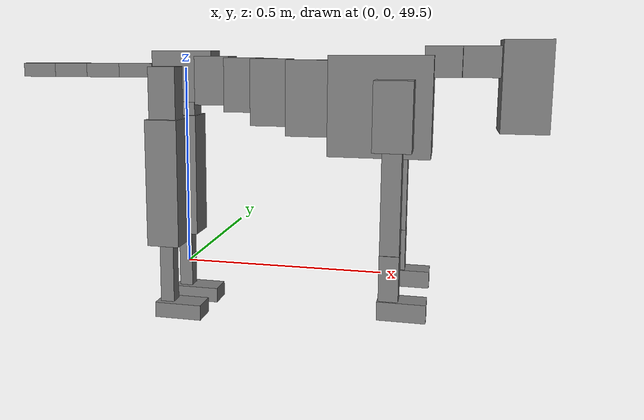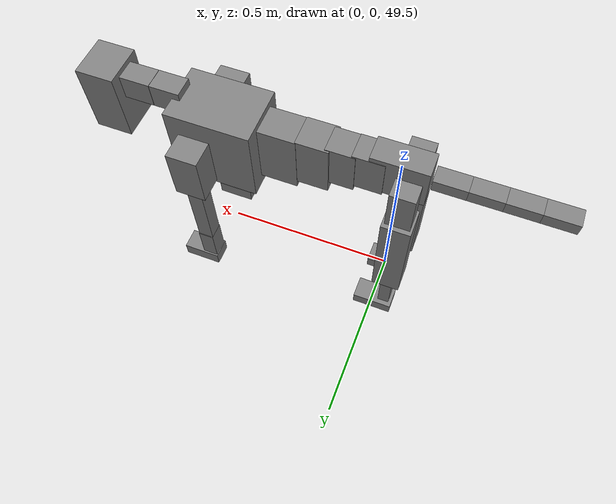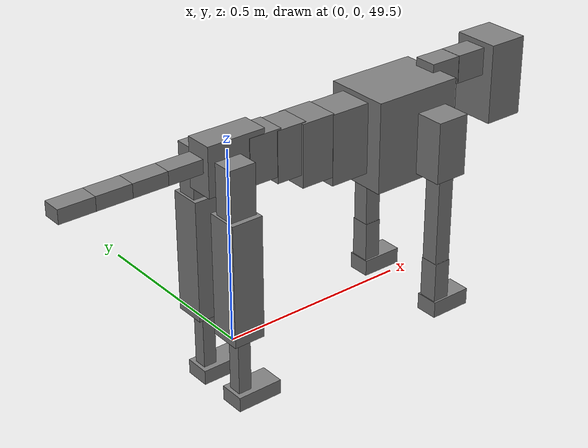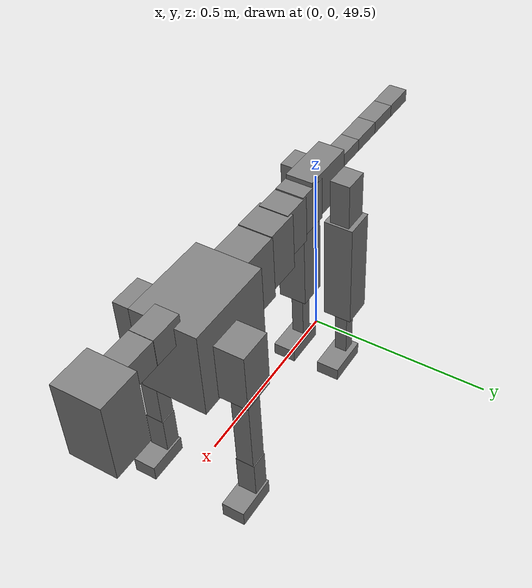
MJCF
<mujoco model="dog">

    <default>
        <joint armature="0.02" stiffness="1" damping="0.2" limited="true"/>
        <geom condim="3" friction="1 0.05 0.05" margin="0.01"/>
        <motor ctrllimited="true" ctrlrange="-1.0 1.0" forcelimited="true" gear="50"/>
    </default>

    <compiler inertiafromgeom="true" angle="radian"/>

    <option timestep="0.016" iterations="50" tolerance="1e-10" solver="Newton" jacobian="dense" cone="pyramidal"/>

    <size nconmax="20000" njmax="60000" nstack="5000000"/>
    <visual>
        <map force="0.1" zfar="30"/>
        <rgba haze="0.15 0.25 0.35 1"/>
        <quality shadowsize="2048"/>
        <global offwidth="800" offheight="800"/>
    </visual>

    <asset>
        <texture type="skybox" builtin="gradient" rgb1="0.3 0.5 0.7" rgb2="0 0 0" width="512" height="512"/>
        <texture name="texplane" type="2d" builtin="checker" rgb1=".2 .3 .4" rgb2=".1 0.15 0.2" width="512" height="512"
                 mark="cross" markrgb=".8 .8 .8"/>
        <texture name="texgeom" type="cube" builtin="flat" mark="cross" width="127" height="1278" rgb1="0.8 0.6 0.4"
                 rgb2="0.8 0.6 0.4" markrgb="1 1 1" random="0.01"/>

        <material name="matplane" reflectance="0.3" texture="texplane" texrepeat="1 1" texuniform="true"/>
        <material name="matgeom" texture="texgeom" texuniform="true" rgba="0.8 0.6 .4 1"/>
    </asset>

    <worldbody>
        <geom name="floor" pos="0 0 0" size="0 0 .25" type="plane" material="matplane" condim="3"/>

        <light directional="false" diffuse=".2 .2 .2" specular="0 0 0" pos="0 0 5" dir="0 0 -1" castshadow="false"/>
        <light mode="targetbodycom" target="torso" directional="false" diffuse=".8 .8 .8" specular="0.3 0.3 0.3"
               pos="0 0 4.0" dir="0 0 -1"/>

        <body name="root" pos="0 0 50">
            <freejoint name="root_1"/>
            <geom type="box" pos="0 0 -0.02" size="0.0774  0.0358  0.063" density="2030"/>

            <body name="spine1" pos="0.054 0 0">
                <joint name="spine1_y" axis="0 1 0" range="0 0.7" limited="true"/>
                <geom type="box" pos="0.02375 0 -0.03" size="0.04375  0.0375  0.05985" density="2030"/>

                <body name="spine2" pos="0.0612 0 0">
                    <joint name="spine2_y" axis="0 1 0" range="-0.15 0.15" limited="true"/>
                    <geom type="box" pos="0.03555  0  -0.04" size="0.04055  0.039  0.06615" density="2030"/>

                    <body name="spine3" pos="0.0730 0 0">
                        <joint name="spine3_y" axis="0 1 0" range="-0.15 0.15" limited="true"/>
                        <geom type="box" pos="0.03555  0  -0.057" size="0.04555  0.0445  0.081" density="2030"/>

                        <body name="spine4" pos="0.0780 0 0">
                            <joint name="spine4_y" axis="0 1 0" range="-0.15 0.15" limited="true"/>
                            <geom type="box" pos="0.05265  0  -0.07" size="0.05265  0.045  0.09135" density="2030"/>

                            <body name="torso" pos="0.1082 0 0">
                                <joint name="torso_y" axis="0 1 0" range="-0.15 0.15" limited="true"/>
                                <geom type="box" pos="0.11925  0  -0.085" size="0.11925  0.085  0.11745"
                                      density="2030"/>

                                <body name="neck1" pos="0.2160  0   0.0180">
                                    <joint name="neck1_y" axis="0 1 0" range="-1.2  -1" limited="true"/>
                                    <geom type="box" pos="0.0423  0  0" size="0.0423  0.03  0.036" density="2325"/>

                                    <body name="neck2" pos="0.0853  0  0">
                                        <joint name="neck2_y" axis="0 1 0" range="0.1  0" limited="true"/>
                                        <geom type="box" pos="0.0423  0  0" size="0.0423  0.03  0.036" density="2325"/>

                                        <body name="head" pos="0.0853  0  0">
                                            <joint name="head_y" axis="0 1 0" range="-0.3  -0.2" limited="true"/>
                                            <geom type="box" pos="0.0531  0  -0.055" size="0.0531  0.06  0.1044"
                                                  density="4030"/>

                                        </body>
                                    </body>
                                </body>

                                <body name="front_shoulder" pos="0.156  0   -0.0480">
                                    <joint name="front_shoulder_y" axis="0 1 0" range="-1 1.5" limited="true"/>
                                    <geom type="box" pos="0 0.13 -0.0524" size="0.0436  0.0373  0.0791" density="1158"/>
                                    <geom type="box" pos="0 -0.13 -0.0524" size="0.0436  0.0373  0.0791"
                                          density="1158"/>

                                    <body name="front_elbow" pos="0  0  -0.1049">
                                        <joint name="front_elbow_y" axis="0 1 0" range="-2 0" limited="true"/>
                                        <geom type="box" pos="0 0.13 -0.1374" size="0.0223  0.0228  0.1374"
                                              density="1081"/>
                                        <geom type="box" pos="0 -0.13 -0.1374" size="0.0223  0.0228  0.1374"
                                              density="1081"/>

                                        <body name="front_wrist" pos="0  0  -0.2747">
                                            <joint name="front_wrist_y" axis="0 1 0" range="-0.2 0" limited="true"/>
                                            <geom type="box" pos="0 0.13 -0.0540" size="0.0225  0.0250  0.0672"
                                                  density="1664"/>
                                            <geom type="box" pos="0 -0.13 -0.0540" size="0.0225  0.0250  0.0672"
                                                  density="1664"/>

                                            <body name="front_finger_end" pos="0  0  -0.1081">
                                                <joint name="front_finger_y" axis="0 1 0" range="-0.4 1"
                                                       limited="true"/>
                                                <geom type="box" pos="0.0301  0.13  -0.0067"
                                                      size="0.0551  0.0301  0.0217" density="1515"/>
                                                <geom type="box" pos="0.0301  -0.13  -0.0067"
                                                      size="0.0551  0.0301  0.0217" density="1515"/>

                                            </body>

                                        </body>
                                    </body>
                                </body>

                            </body>
                        </body>
                    </body>
                </body>
            </body>

            <body name="back_hip" pos="-0.03 0 -0.018">
                <joint name="back_hip_y" axis="0 1 0" range="-1.5 0.3" limited="true"/>
                <geom type="box" pos="0 0.07 -0.0603" size="0.0345  0.0270  0.0831" density="1154"/>
                <geom type="box" pos="0 -0.07 -0.0603" size="0.0345  0.0270  0.0831" density="1154"/>

                <body name="back_knee" pos="0  0  -0.1206">
                    <joint name="back_knee_y" axis="0 1 0" range="0 2.8" limited="true"/>
                    <geom type="box" pos="0 0.07 -0.1423" size="0.0409  0.0403  0.1578" density="1227"/>
                    <geom type="box" pos="0 -0.07 -0.1423" size="0.0409  0.0403  0.1578" density="1227"/>

                    <body name="back_ankle" pos="0  0  -0.2846">
                        <joint name="back_ankle_y" axis="0 1 0" range="-2.2 0" limited="true"/>
                        <geom type="box" pos="0 0.07 -0.0898" size="0.0175  0.0175  0.1011" density="1284"/>
                        <geom type="box" pos="0 -0.07 -0.0898" size="0.0175  0.0175  0.1011" density="1284"/>

                        <body name="back_toe_end" pos="0  0  -0.1796">
                            <joint name="back_toe_y" axis="0 1 0" range="-0.4 1" limited="true"/>
                            <geom type="box" pos="0.0327  0.07  -0.0041" size="0.0599  0.0327  0.0191" density="1515"/>
                            <geom type="box" pos="0.0327  -0.07  -0.0041" size="0.0599  0.0327  0.0191" density="1515"/>

                        </body>
                    </body>
                </body>
            </body>

            <body name="tail1" pos="-0.074 0 -0.006">
                <joint name="tail1_y" axis="0 1 0" range="-0.2 0.2" limited="true"/>
                <geom type="box" pos="-0.0536  0  0" size="0.045  0.025  0.0175" density="1587"/>

                <body name="tail2" pos="-0.09 0 0">
                    <joint name="tail2_y" axis="0 1 0" range="-0.2 0.2" limited="true"/>
                    <geom type="box" pos="-0.0536  0  0" size="0.045  0.025  0.0175" density="1587"/>

                    <body name="tail3" pos="-0.09 0 0">
                        <joint name="tail3_y" axis="0 1 0" range="-0.2 0.2" limited="true"/>
                        <geom type="box" pos="-0.0536  0  0" size="0.045  0.025  0.0175" density="1587"/>

                        <body name="tail4" pos="-0.09 0 0">
                            <joint name="tail4_y" axis="0 1 0" range="-0.2 0.2" limited="true"/>
                            <geom type="box" pos="-0.0536  0  0" size="0.045  0.025  0.0175" density="1587"/>

                        </body>
                    </body>
                </body>
            </body>
        </body>
    </worldbody>

    <actuator>
        <motor joint="spine1_y" forcerange="-150 150     "/>
        <motor joint="spine2_y" forcerange="-150 150     "/>
        <motor joint="spine3_y" forcerange="-150 150     "/>
        <motor joint="spine4_y" forcerange="-150 150     "/>
        <motor joint="torso_y" forcerange="-150 150     "/>
        <motor joint="neck1_y" forcerange="-100 100       "/>
        <motor joint="neck2_y" forcerange="-100 100       "/>
        <motor joint="head_y" forcerange="-150 150       "/>
        <motor joint="front_shoulder_y" forcerange="-171.14 177.49"/>
        <motor joint="front_elbow_y" forcerange="-117.09 148.98"/>
        <motor joint="front_wrist_y" forcerange="-144.57 55.55"/>
        <motor joint="front_finger_y" forcerange="-50.68 69.71"/>
        <motor joint="back_hip_y" forcerange="-218.91 341.61"/>
        <motor joint="back_knee_y" forcerange="-392.53 393.91"/>
        <motor joint="back_angle_y" forcerange="-102.16 78.09"/>
        <motor joint="back_toe_y" forcerange="-110.25 71.13"/>
        <motor joint="tail1_y" forcerange="-50 50     "/>
        <motor joint="tail2_y" forcerange="-50 50     "/>
        <motor joint="tail3_y" forcerange="-50 50     "/>
        <motor joint="tail4_y" forcerange="-50 50     "/>
    </actuator>
</mujoco>
